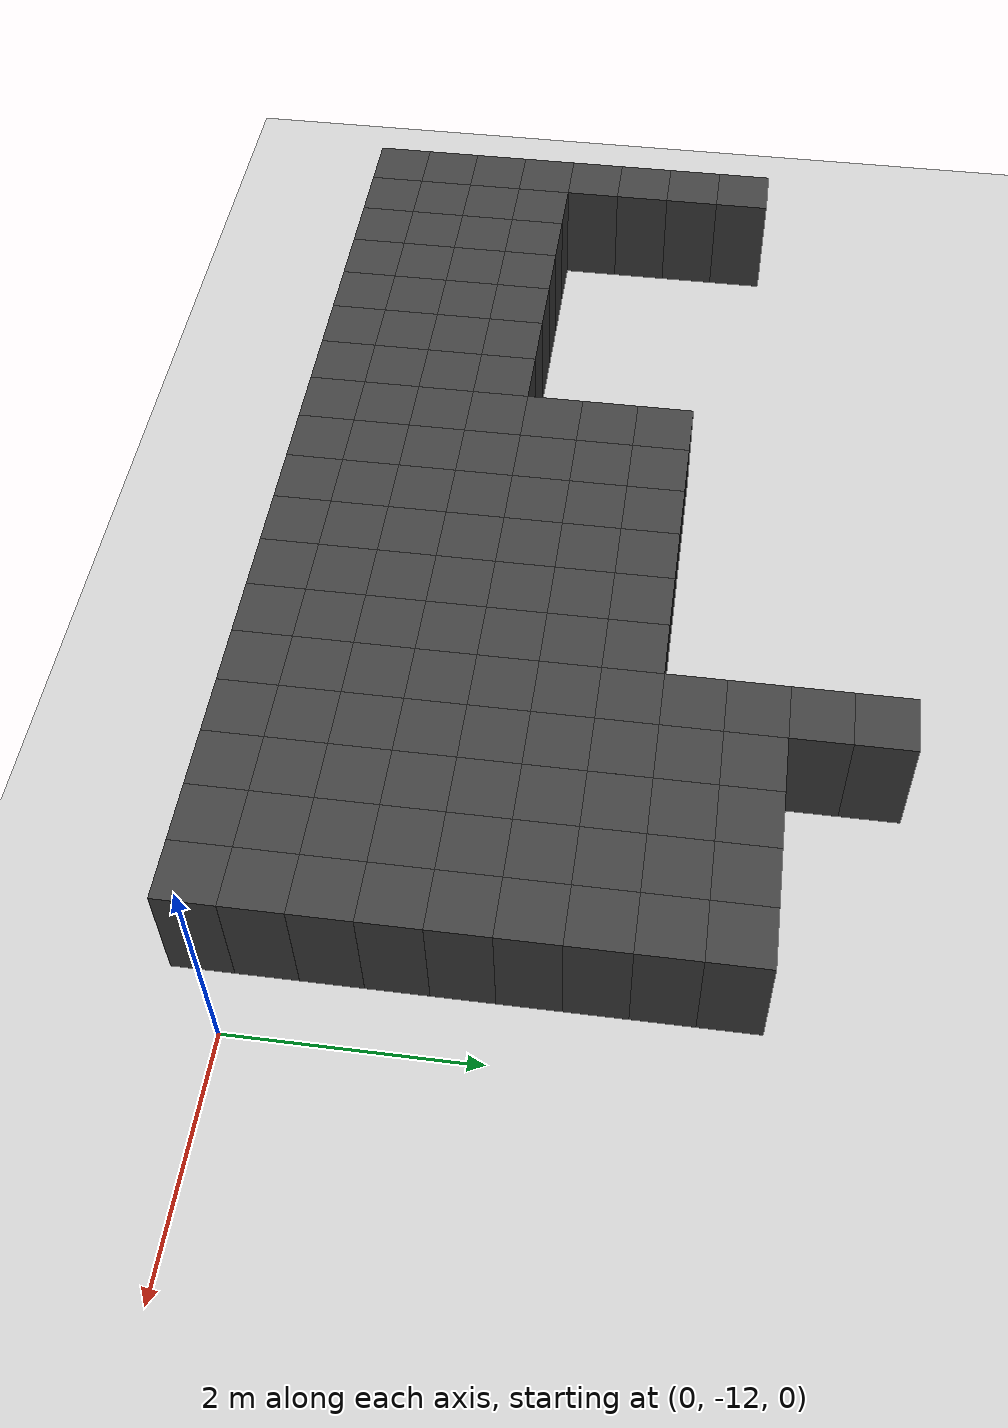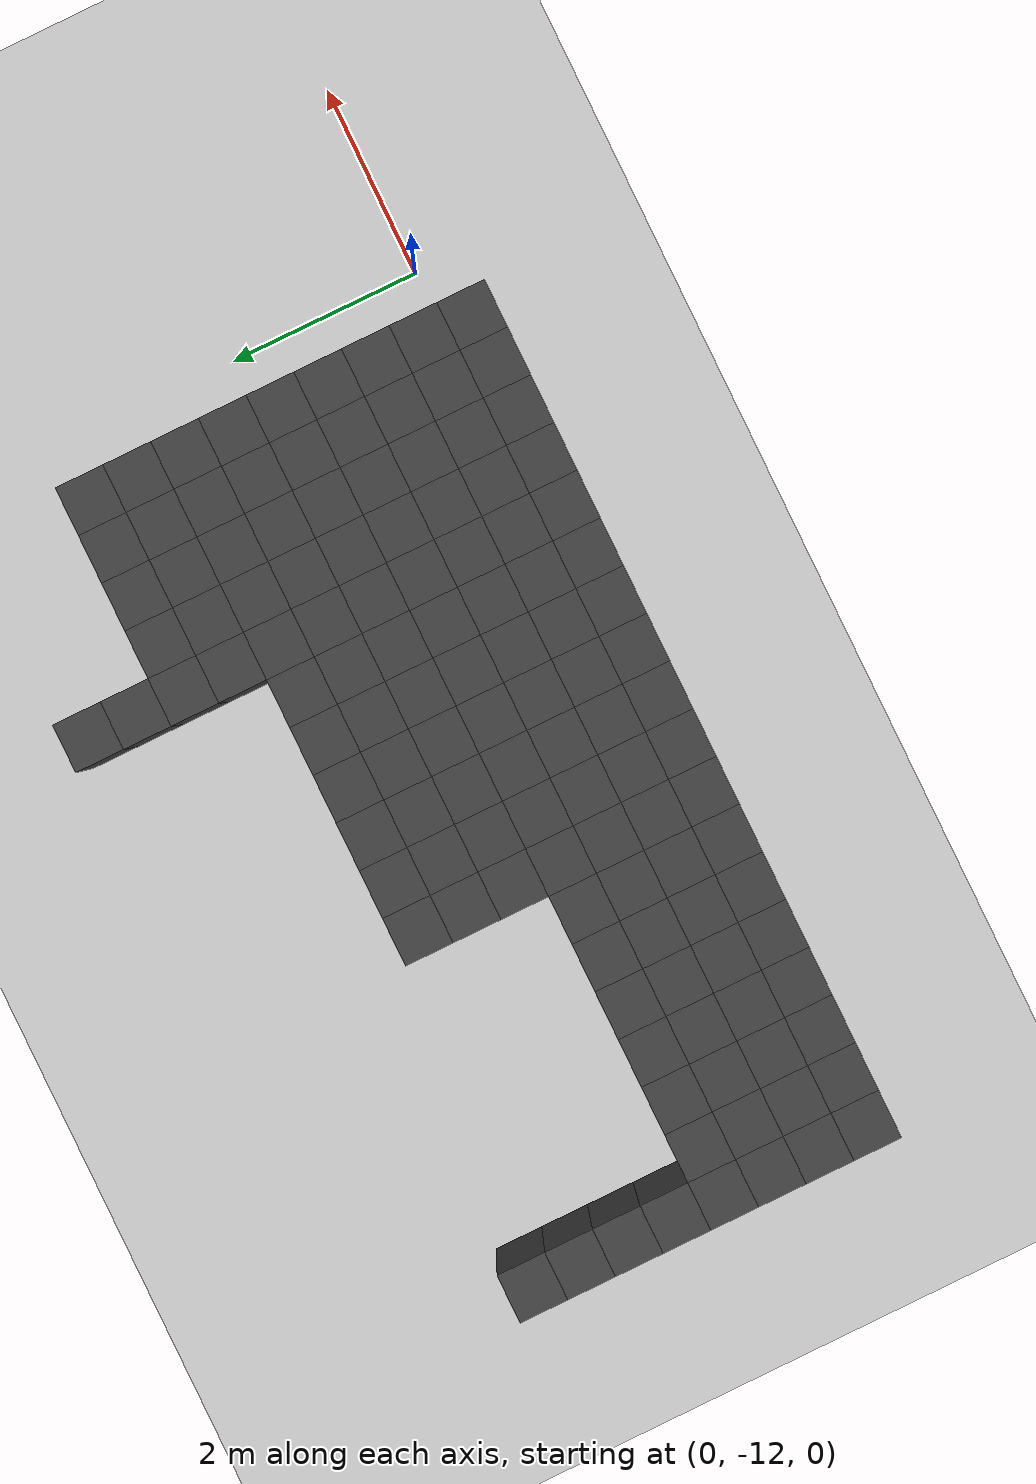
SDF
<sdf version="1.7">
 <world name="map_14547">
  <model name="ground_plane">
   <static>true</static>
   <link name="link">
    <collision name="collision">
     <geometry><plane><normal>0 0 1</normal><size>200 200</size></plane></geometry>
    </collision>
    <visual name="visual">
     <geometry><plane><normal>0 0 1</normal><size>200 200</size></plane></geometry>
     <material><ambient>0.8 0.8 0.8 1</ambient><diffuse>0.8 0.8 0.8 1</diffuse></material>
    </visual>
   </link>
  </model>
  <model name="maze_environment">
   <static>true</static>
   <link name="wall_1380">
    <pose>-2.750 -7.250 0.500 0 0 0</pose>
    <collision name="col"><geometry><box><size>0.5 0.5 1.0</size></box></geometry></collision>
    <visual name="vis">
     <geometry><box><size>0.5 0.5 1.0</size></box></geometry>
     <material><ambient>0.15 0.15 0.15 1</ambient><diffuse>0.25 0.25 0.25 1</diffuse></material>
    </visual>
   </link>
   <link name="wall_1411">
    <pose>-2.750 -7.750 0.500 0 0 0</pose>
    <collision name="col"><geometry><box><size>0.5 0.5 1.0</size></box></geometry></collision>
    <visual name="vis">
     <geometry><box><size>0.5 0.5 1.0</size></box></geometry>
     <material><ambient>0.15 0.15 0.15 1</ambient><diffuse>0.25 0.25 0.25 1</diffuse></material>
    </visual>
   </link>
   <link name="wall_1442">
    <pose>-2.750 -8.250 0.500 0 0 0</pose>
    <collision name="col"><geometry><box><size>0.5 0.5 1.0</size></box></geometry></collision>
    <visual name="vis">
     <geometry><box><size>0.5 0.5 1.0</size></box></geometry>
     <material><ambient>0.15 0.15 0.15 1</ambient><diffuse>0.25 0.25 0.25 1</diffuse></material>
    </visual>
   </link>
   <link name="wall_1443">
    <pose>-2.250 -8.250 0.500 0 0 0</pose>
    <collision name="col"><geometry><box><size>0.5 0.5 1.0</size></box></geometry></collision>
    <visual name="vis">
     <geometry><box><size>0.5 0.5 1.0</size></box></geometry>
     <material><ambient>0.15 0.15 0.15 1</ambient><diffuse>0.25 0.25 0.25 1</diffuse></material>
    </visual>
   </link>
   <link name="wall_1444">
    <pose>-1.750 -8.250 0.500 0 0 0</pose>
    <collision name="col"><geometry><box><size>0.5 0.5 1.0</size></box></geometry></collision>
    <visual name="vis">
     <geometry><box><size>0.5 0.5 1.0</size></box></geometry>
     <material><ambient>0.15 0.15 0.15 1</ambient><diffuse>0.25 0.25 0.25 1</diffuse></material>
    </visual>
   </link>
   <link name="wall_1445">
    <pose>-1.250 -8.250 0.500 0 0 0</pose>
    <collision name="col"><geometry><box><size>0.5 0.5 1.0</size></box></geometry></collision>
    <visual name="vis">
     <geometry><box><size>0.5 0.5 1.0</size></box></geometry>
     <material><ambient>0.15 0.15 0.15 1</ambient><diffuse>0.25 0.25 0.25 1</diffuse></material>
    </visual>
   </link>
   <link name="wall_1446">
    <pose>-0.750 -8.250 0.500 0 0 0</pose>
    <collision name="col"><geometry><box><size>0.5 0.5 1.0</size></box></geometry></collision>
    <visual name="vis">
     <geometry><box><size>0.5 0.5 1.0</size></box></geometry>
     <material><ambient>0.15 0.15 0.15 1</ambient><diffuse>0.25 0.25 0.25 1</diffuse></material>
    </visual>
   </link>
   <link name="wall_1478">
    <pose>-9.250 -8.750 0.500 0 0 0</pose>
    <collision name="col"><geometry><box><size>0.5 0.5 1.0</size></box></geometry></collision>
    <visual name="vis">
     <geometry><box><size>0.5 0.5 1.0</size></box></geometry>
     <material><ambient>0.15 0.15 0.15 1</ambient><diffuse>0.25 0.25 0.25 1</diffuse></material>
    </visual>
   </link>
   <link name="wall_1479">
    <pose>-2.750 -8.750 0.500 0 0 0</pose>
    <collision name="col"><geometry><box><size>0.5 0.5 1.0</size></box></geometry></collision>
    <visual name="vis">
     <geometry><box><size>0.5 0.5 1.0</size></box></geometry>
     <material><ambient>0.15 0.15 0.15 1</ambient><diffuse>0.25 0.25 0.25 1</diffuse></material>
    </visual>
   </link>
   <link name="wall_1480">
    <pose>-2.250 -8.750 0.500 0 0 0</pose>
    <collision name="col"><geometry><box><size>0.5 0.5 1.0</size></box></geometry></collision>
    <visual name="vis">
     <geometry><box><size>0.5 0.5 1.0</size></box></geometry>
     <material><ambient>0.15 0.15 0.15 1</ambient><diffuse>0.25 0.25 0.25 1</diffuse></material>
    </visual>
   </link>
   <link name="wall_1481">
    <pose>-1.750 -8.750 0.500 0 0 0</pose>
    <collision name="col"><geometry><box><size>0.5 0.5 1.0</size></box></geometry></collision>
    <visual name="vis">
     <geometry><box><size>0.5 0.5 1.0</size></box></geometry>
     <material><ambient>0.15 0.15 0.15 1</ambient><diffuse>0.25 0.25 0.25 1</diffuse></material>
    </visual>
   </link>
   <link name="wall_1482">
    <pose>-1.250 -8.750 0.500 0 0 0</pose>
    <collision name="col"><geometry><box><size>0.5 0.5 1.0</size></box></geometry></collision>
    <visual name="vis">
     <geometry><box><size>0.5 0.5 1.0</size></box></geometry>
     <material><ambient>0.15 0.15 0.15 1</ambient><diffuse>0.25 0.25 0.25 1</diffuse></material>
    </visual>
   </link>
   <link name="wall_1483">
    <pose>-0.750 -8.750 0.500 0 0 0</pose>
    <collision name="col"><geometry><box><size>0.5 0.5 1.0</size></box></geometry></collision>
    <visual name="vis">
     <geometry><box><size>0.5 0.5 1.0</size></box></geometry>
     <material><ambient>0.15 0.15 0.15 1</ambient><diffuse>0.25 0.25 0.25 1</diffuse></material>
    </visual>
   </link>
   <link name="wall_1515">
    <pose>-9.250 -9.250 0.500 0 0 0</pose>
    <collision name="col"><geometry><box><size>0.5 0.5 1.0</size></box></geometry></collision>
    <visual name="vis">
     <geometry><box><size>0.5 0.5 1.0</size></box></geometry>
     <material><ambient>0.15 0.15 0.15 1</ambient><diffuse>0.25 0.25 0.25 1</diffuse></material>
    </visual>
   </link>
   <link name="wall_1516">
    <pose>-5.750 -9.250 0.500 0 0 0</pose>
    <collision name="col"><geometry><box><size>0.5 0.5 1.0</size></box></geometry></collision>
    <visual name="vis">
     <geometry><box><size>0.5 0.5 1.0</size></box></geometry>
     <material><ambient>0.15 0.15 0.15 1</ambient><diffuse>0.25 0.25 0.25 1</diffuse></material>
    </visual>
   </link>
   <link name="wall_1517">
    <pose>-5.250 -9.250 0.500 0 0 0</pose>
    <collision name="col"><geometry><box><size>0.5 0.5 1.0</size></box></geometry></collision>
    <visual name="vis">
     <geometry><box><size>0.5 0.5 1.0</size></box></geometry>
     <material><ambient>0.15 0.15 0.15 1</ambient><diffuse>0.25 0.25 0.25 1</diffuse></material>
    </visual>
   </link>
   <link name="wall_1518">
    <pose>-4.750 -9.250 0.500 0 0 0</pose>
    <collision name="col"><geometry><box><size>0.5 0.5 1.0</size></box></geometry></collision>
    <visual name="vis">
     <geometry><box><size>0.5 0.5 1.0</size></box></geometry>
     <material><ambient>0.15 0.15 0.15 1</ambient><diffuse>0.25 0.25 0.25 1</diffuse></material>
    </visual>
   </link>
   <link name="wall_1519">
    <pose>-4.250 -9.250 0.500 0 0 0</pose>
    <collision name="col"><geometry><box><size>0.5 0.5 1.0</size></box></geometry></collision>
    <visual name="vis">
     <geometry><box><size>0.5 0.5 1.0</size></box></geometry>
     <material><ambient>0.15 0.15 0.15 1</ambient><diffuse>0.25 0.25 0.25 1</diffuse></material>
    </visual>
   </link>
   <link name="wall_1520">
    <pose>-3.750 -9.250 0.500 0 0 0</pose>
    <collision name="col"><geometry><box><size>0.5 0.5 1.0</size></box></geometry></collision>
    <visual name="vis">
     <geometry><box><size>0.5 0.5 1.0</size></box></geometry>
     <material><ambient>0.15 0.15 0.15 1</ambient><diffuse>0.25 0.25 0.25 1</diffuse></material>
    </visual>
   </link>
   <link name="wall_1521">
    <pose>-3.250 -9.250 0.500 0 0 0</pose>
    <collision name="col"><geometry><box><size>0.5 0.5 1.0</size></box></geometry></collision>
    <visual name="vis">
     <geometry><box><size>0.5 0.5 1.0</size></box></geometry>
     <material><ambient>0.15 0.15 0.15 1</ambient><diffuse>0.25 0.25 0.25 1</diffuse></material>
    </visual>
   </link>
   <link name="wall_1522">
    <pose>-2.750 -9.250 0.500 0 0 0</pose>
    <collision name="col"><geometry><box><size>0.5 0.5 1.0</size></box></geometry></collision>
    <visual name="vis">
     <geometry><box><size>0.5 0.5 1.0</size></box></geometry>
     <material><ambient>0.15 0.15 0.15 1</ambient><diffuse>0.25 0.25 0.25 1</diffuse></material>
    </visual>
   </link>
   <link name="wall_1523">
    <pose>-2.250 -9.250 0.500 0 0 0</pose>
    <collision name="col"><geometry><box><size>0.5 0.5 1.0</size></box></geometry></collision>
    <visual name="vis">
     <geometry><box><size>0.5 0.5 1.0</size></box></geometry>
     <material><ambient>0.15 0.15 0.15 1</ambient><diffuse>0.25 0.25 0.25 1</diffuse></material>
    </visual>
   </link>
   <link name="wall_1524">
    <pose>-1.750 -9.250 0.500 0 0 0</pose>
    <collision name="col"><geometry><box><size>0.5 0.5 1.0</size></box></geometry></collision>
    <visual name="vis">
     <geometry><box><size>0.5 0.5 1.0</size></box></geometry>
     <material><ambient>0.15 0.15 0.15 1</ambient><diffuse>0.25 0.25 0.25 1</diffuse></material>
    </visual>
   </link>
   <link name="wall_1525">
    <pose>-1.250 -9.250 0.500 0 0 0</pose>
    <collision name="col"><geometry><box><size>0.5 0.5 1.0</size></box></geometry></collision>
    <visual name="vis">
     <geometry><box><size>0.5 0.5 1.0</size></box></geometry>
     <material><ambient>0.15 0.15 0.15 1</ambient><diffuse>0.25 0.25 0.25 1</diffuse></material>
    </visual>
   </link>
   <link name="wall_1526">
    <pose>-0.750 -9.250 0.500 0 0 0</pose>
    <collision name="col"><geometry><box><size>0.5 0.5 1.0</size></box></geometry></collision>
    <visual name="vis">
     <geometry><box><size>0.5 0.5 1.0</size></box></geometry>
     <material><ambient>0.15 0.15 0.15 1</ambient><diffuse>0.25 0.25 0.25 1</diffuse></material>
    </visual>
   </link>
   <link name="wall_1558">
    <pose>-9.250 -9.750 0.500 0 0 0</pose>
    <collision name="col"><geometry><box><size>0.5 0.5 1.0</size></box></geometry></collision>
    <visual name="vis">
     <geometry><box><size>0.5 0.5 1.0</size></box></geometry>
     <material><ambient>0.15 0.15 0.15 1</ambient><diffuse>0.25 0.25 0.25 1</diffuse></material>
    </visual>
   </link>
   <link name="wall_1559">
    <pose>-5.750 -9.750 0.500 0 0 0</pose>
    <collision name="col"><geometry><box><size>0.5 0.5 1.0</size></box></geometry></collision>
    <visual name="vis">
     <geometry><box><size>0.5 0.5 1.0</size></box></geometry>
     <material><ambient>0.15 0.15 0.15 1</ambient><diffuse>0.25 0.25 0.25 1</diffuse></material>
    </visual>
   </link>
   <link name="wall_1560">
    <pose>-5.250 -9.750 0.500 0 0 0</pose>
    <collision name="col"><geometry><box><size>0.5 0.5 1.0</size></box></geometry></collision>
    <visual name="vis">
     <geometry><box><size>0.5 0.5 1.0</size></box></geometry>
     <material><ambient>0.15 0.15 0.15 1</ambient><diffuse>0.25 0.25 0.25 1</diffuse></material>
    </visual>
   </link>
   <link name="wall_1561">
    <pose>-4.750 -9.750 0.500 0 0 0</pose>
    <collision name="col"><geometry><box><size>0.5 0.5 1.0</size></box></geometry></collision>
    <visual name="vis">
     <geometry><box><size>0.5 0.5 1.0</size></box></geometry>
     <material><ambient>0.15 0.15 0.15 1</ambient><diffuse>0.25 0.25 0.25 1</diffuse></material>
    </visual>
   </link>
   <link name="wall_1562">
    <pose>-4.250 -9.750 0.500 0 0 0</pose>
    <collision name="col"><geometry><box><size>0.5 0.5 1.0</size></box></geometry></collision>
    <visual name="vis">
     <geometry><box><size>0.5 0.5 1.0</size></box></geometry>
     <material><ambient>0.15 0.15 0.15 1</ambient><diffuse>0.25 0.25 0.25 1</diffuse></material>
    </visual>
   </link>
   <link name="wall_1563">
    <pose>-3.750 -9.750 0.500 0 0 0</pose>
    <collision name="col"><geometry><box><size>0.5 0.5 1.0</size></box></geometry></collision>
    <visual name="vis">
     <geometry><box><size>0.5 0.5 1.0</size></box></geometry>
     <material><ambient>0.15 0.15 0.15 1</ambient><diffuse>0.25 0.25 0.25 1</diffuse></material>
    </visual>
   </link>
   <link name="wall_1564">
    <pose>-3.250 -9.750 0.500 0 0 0</pose>
    <collision name="col"><geometry><box><size>0.5 0.5 1.0</size></box></geometry></collision>
    <visual name="vis">
     <geometry><box><size>0.5 0.5 1.0</size></box></geometry>
     <material><ambient>0.15 0.15 0.15 1</ambient><diffuse>0.25 0.25 0.25 1</diffuse></material>
    </visual>
   </link>
   <link name="wall_1565">
    <pose>-2.750 -9.750 0.500 0 0 0</pose>
    <collision name="col"><geometry><box><size>0.5 0.5 1.0</size></box></geometry></collision>
    <visual name="vis">
     <geometry><box><size>0.5 0.5 1.0</size></box></geometry>
     <material><ambient>0.15 0.15 0.15 1</ambient><diffuse>0.25 0.25 0.25 1</diffuse></material>
    </visual>
   </link>
   <link name="wall_1566">
    <pose>-2.250 -9.750 0.500 0 0 0</pose>
    <collision name="col"><geometry><box><size>0.5 0.5 1.0</size></box></geometry></collision>
    <visual name="vis">
     <geometry><box><size>0.5 0.5 1.0</size></box></geometry>
     <material><ambient>0.15 0.15 0.15 1</ambient><diffuse>0.25 0.25 0.25 1</diffuse></material>
    </visual>
   </link>
   <link name="wall_1567">
    <pose>-1.750 -9.750 0.500 0 0 0</pose>
    <collision name="col"><geometry><box><size>0.5 0.5 1.0</size></box></geometry></collision>
    <visual name="vis">
     <geometry><box><size>0.5 0.5 1.0</size></box></geometry>
     <material><ambient>0.15 0.15 0.15 1</ambient><diffuse>0.25 0.25 0.25 1</diffuse></material>
    </visual>
   </link>
   <link name="wall_1568">
    <pose>-1.250 -9.750 0.500 0 0 0</pose>
    <collision name="col"><geometry><box><size>0.5 0.5 1.0</size></box></geometry></collision>
    <visual name="vis">
     <geometry><box><size>0.5 0.5 1.0</size></box></geometry>
     <material><ambient>0.15 0.15 0.15 1</ambient><diffuse>0.25 0.25 0.25 1</diffuse></material>
    </visual>
   </link>
   <link name="wall_1569">
    <pose>-0.750 -9.750 0.500 0 0 0</pose>
    <collision name="col"><geometry><box><size>0.5 0.5 1.0</size></box></geometry></collision>
    <visual name="vis">
     <geometry><box><size>0.5 0.5 1.0</size></box></geometry>
     <material><ambient>0.15 0.15 0.15 1</ambient><diffuse>0.25 0.25 0.25 1</diffuse></material>
    </visual>
   </link>
   <link name="wall_1601">
    <pose>-9.250 -10.250 0.500 0 0 0</pose>
    <collision name="col"><geometry><box><size>0.5 0.5 1.0</size></box></geometry></collision>
    <visual name="vis">
     <geometry><box><size>0.5 0.5 1.0</size></box></geometry>
     <material><ambient>0.15 0.15 0.15 1</ambient><diffuse>0.25 0.25 0.25 1</diffuse></material>
    </visual>
   </link>
   <link name="wall_1602">
    <pose>-5.750 -10.250 0.500 0 0 0</pose>
    <collision name="col"><geometry><box><size>0.5 0.5 1.0</size></box></geometry></collision>
    <visual name="vis">
     <geometry><box><size>0.5 0.5 1.0</size></box></geometry>
     <material><ambient>0.15 0.15 0.15 1</ambient><diffuse>0.25 0.25 0.25 1</diffuse></material>
    </visual>
   </link>
   <link name="wall_1603">
    <pose>-5.250 -10.250 0.500 0 0 0</pose>
    <collision name="col"><geometry><box><size>0.5 0.5 1.0</size></box></geometry></collision>
    <visual name="vis">
     <geometry><box><size>0.5 0.5 1.0</size></box></geometry>
     <material><ambient>0.15 0.15 0.15 1</ambient><diffuse>0.25 0.25 0.25 1</diffuse></material>
    </visual>
   </link>
   <link name="wall_1604">
    <pose>-4.750 -10.250 0.500 0 0 0</pose>
    <collision name="col"><geometry><box><size>0.5 0.5 1.0</size></box></geometry></collision>
    <visual name="vis">
     <geometry><box><size>0.5 0.5 1.0</size></box></geometry>
     <material><ambient>0.15 0.15 0.15 1</ambient><diffuse>0.25 0.25 0.25 1</diffuse></material>
    </visual>
   </link>
   <link name="wall_1605">
    <pose>-4.250 -10.250 0.500 0 0 0</pose>
    <collision name="col"><geometry><box><size>0.5 0.5 1.0</size></box></geometry></collision>
    <visual name="vis">
     <geometry><box><size>0.5 0.5 1.0</size></box></geometry>
     <material><ambient>0.15 0.15 0.15 1</ambient><diffuse>0.25 0.25 0.25 1</diffuse></material>
    </visual>
   </link>
   <link name="wall_1606">
    <pose>-3.750 -10.250 0.500 0 0 0</pose>
    <collision name="col"><geometry><box><size>0.5 0.5 1.0</size></box></geometry></collision>
    <visual name="vis">
     <geometry><box><size>0.5 0.5 1.0</size></box></geometry>
     <material><ambient>0.15 0.15 0.15 1</ambient><diffuse>0.25 0.25 0.25 1</diffuse></material>
    </visual>
   </link>
   <link name="wall_1607">
    <pose>-3.250 -10.250 0.500 0 0 0</pose>
    <collision name="col"><geometry><box><size>0.5 0.5 1.0</size></box></geometry></collision>
    <visual name="vis">
     <geometry><box><size>0.5 0.5 1.0</size></box></geometry>
     <material><ambient>0.15 0.15 0.15 1</ambient><diffuse>0.25 0.25 0.25 1</diffuse></material>
    </visual>
   </link>
   <link name="wall_1608">
    <pose>-2.750 -10.250 0.500 0 0 0</pose>
    <collision name="col"><geometry><box><size>0.5 0.5 1.0</size></box></geometry></collision>
    <visual name="vis">
     <geometry><box><size>0.5 0.5 1.0</size></box></geometry>
     <material><ambient>0.15 0.15 0.15 1</ambient><diffuse>0.25 0.25 0.25 1</diffuse></material>
    </visual>
   </link>
   <link name="wall_1609">
    <pose>-2.250 -10.250 0.500 0 0 0</pose>
    <collision name="col"><geometry><box><size>0.5 0.5 1.0</size></box></geometry></collision>
    <visual name="vis">
     <geometry><box><size>0.5 0.5 1.0</size></box></geometry>
     <material><ambient>0.15 0.15 0.15 1</ambient><diffuse>0.25 0.25 0.25 1</diffuse></material>
    </visual>
   </link>
   <link name="wall_1610">
    <pose>-1.750 -10.250 0.500 0 0 0</pose>
    <collision name="col"><geometry><box><size>0.5 0.5 1.0</size></box></geometry></collision>
    <visual name="vis">
     <geometry><box><size>0.5 0.5 1.0</size></box></geometry>
     <material><ambient>0.15 0.15 0.15 1</ambient><diffuse>0.25 0.25 0.25 1</diffuse></material>
    </visual>
   </link>
   <link name="wall_1611">
    <pose>-1.250 -10.250 0.500 0 0 0</pose>
    <collision name="col"><geometry><box><size>0.5 0.5 1.0</size></box></geometry></collision>
    <visual name="vis">
     <geometry><box><size>0.5 0.5 1.0</size></box></geometry>
     <material><ambient>0.15 0.15 0.15 1</ambient><diffuse>0.25 0.25 0.25 1</diffuse></material>
    </visual>
   </link>
   <link name="wall_1612">
    <pose>-0.750 -10.250 0.500 0 0 0</pose>
    <collision name="col"><geometry><box><size>0.5 0.5 1.0</size></box></geometry></collision>
    <visual name="vis">
     <geometry><box><size>0.5 0.5 1.0</size></box></geometry>
     <material><ambient>0.15 0.15 0.15 1</ambient><diffuse>0.25 0.25 0.25 1</diffuse></material>
    </visual>
   </link>
   <link name="wall_1644">
    <pose>-9.250 -10.750 0.500 0 0 0</pose>
    <collision name="col"><geometry><box><size>0.5 0.5 1.0</size></box></geometry></collision>
    <visual name="vis">
     <geometry><box><size>0.5 0.5 1.0</size></box></geometry>
     <material><ambient>0.15 0.15 0.15 1</ambient><diffuse>0.25 0.25 0.25 1</diffuse></material>
    </visual>
   </link>
   <link name="wall_1645">
    <pose>-8.750 -10.750 0.500 0 0 0</pose>
    <collision name="col"><geometry><box><size>0.5 0.5 1.0</size></box></geometry></collision>
    <visual name="vis">
     <geometry><box><size>0.5 0.5 1.0</size></box></geometry>
     <material><ambient>0.15 0.15 0.15 1</ambient><diffuse>0.25 0.25 0.25 1</diffuse></material>
    </visual>
   </link>
   <link name="wall_1646">
    <pose>-8.250 -10.750 0.500 0 0 0</pose>
    <collision name="col"><geometry><box><size>0.5 0.5 1.0</size></box></geometry></collision>
    <visual name="vis">
     <geometry><box><size>0.5 0.5 1.0</size></box></geometry>
     <material><ambient>0.15 0.15 0.15 1</ambient><diffuse>0.25 0.25 0.25 1</diffuse></material>
    </visual>
   </link>
   <link name="wall_1647">
    <pose>-7.750 -10.750 0.500 0 0 0</pose>
    <collision name="col"><geometry><box><size>0.5 0.5 1.0</size></box></geometry></collision>
    <visual name="vis">
     <geometry><box><size>0.5 0.5 1.0</size></box></geometry>
     <material><ambient>0.15 0.15 0.15 1</ambient><diffuse>0.25 0.25 0.25 1</diffuse></material>
    </visual>
   </link>
   <link name="wall_1648">
    <pose>-7.250 -10.750 0.500 0 0 0</pose>
    <collision name="col"><geometry><box><size>0.5 0.5 1.0</size></box></geometry></collision>
    <visual name="vis">
     <geometry><box><size>0.5 0.5 1.0</size></box></geometry>
     <material><ambient>0.15 0.15 0.15 1</ambient><diffuse>0.25 0.25 0.25 1</diffuse></material>
    </visual>
   </link>
   <link name="wall_1649">
    <pose>-6.750 -10.750 0.500 0 0 0</pose>
    <collision name="col"><geometry><box><size>0.5 0.5 1.0</size></box></geometry></collision>
    <visual name="vis">
     <geometry><box><size>0.5 0.5 1.0</size></box></geometry>
     <material><ambient>0.15 0.15 0.15 1</ambient><diffuse>0.25 0.25 0.25 1</diffuse></material>
    </visual>
   </link>
   <link name="wall_1650">
    <pose>-6.250 -10.750 0.500 0 0 0</pose>
    <collision name="col"><geometry><box><size>0.5 0.5 1.0</size></box></geometry></collision>
    <visual name="vis">
     <geometry><box><size>0.5 0.5 1.0</size></box></geometry>
     <material><ambient>0.15 0.15 0.15 1</ambient><diffuse>0.25 0.25 0.25 1</diffuse></material>
    </visual>
   </link>
   <link name="wall_1651">
    <pose>-5.750 -10.750 0.500 0 0 0</pose>
    <collision name="col"><geometry><box><size>0.5 0.5 1.0</size></box></geometry></collision>
    <visual name="vis">
     <geometry><box><size>0.5 0.5 1.0</size></box></geometry>
     <material><ambient>0.15 0.15 0.15 1</ambient><diffuse>0.25 0.25 0.25 1</diffuse></material>
    </visual>
   </link>
   <link name="wall_1652">
    <pose>-5.250 -10.750 0.500 0 0 0</pose>
    <collision name="col"><geometry><box><size>0.5 0.5 1.0</size></box></geometry></collision>
    <visual name="vis">
     <geometry><box><size>0.5 0.5 1.0</size></box></geometry>
     <material><ambient>0.15 0.15 0.15 1</ambient><diffuse>0.25 0.25 0.25 1</diffuse></material>
    </visual>
   </link>
   <link name="wall_1653">
    <pose>-4.750 -10.750 0.500 0 0 0</pose>
    <collision name="col"><geometry><box><size>0.5 0.5 1.0</size></box></geometry></collision>
    <visual name="vis">
     <geometry><box><size>0.5 0.5 1.0</size></box></geometry>
     <material><ambient>0.15 0.15 0.15 1</ambient><diffuse>0.25 0.25 0.25 1</diffuse></material>
    </visual>
   </link>
   <link name="wall_1654">
    <pose>-4.250 -10.750 0.500 0 0 0</pose>
    <collision name="col"><geometry><box><size>0.5 0.5 1.0</size></box></geometry></collision>
    <visual name="vis">
     <geometry><box><size>0.5 0.5 1.0</size></box></geometry>
     <material><ambient>0.15 0.15 0.15 1</ambient><diffuse>0.25 0.25 0.25 1</diffuse></material>
    </visual>
   </link>
   <link name="wall_1655">
    <pose>-3.750 -10.750 0.500 0 0 0</pose>
    <collision name="col"><geometry><box><size>0.5 0.5 1.0</size></box></geometry></collision>
    <visual name="vis">
     <geometry><box><size>0.5 0.5 1.0</size></box></geometry>
     <material><ambient>0.15 0.15 0.15 1</ambient><diffuse>0.25 0.25 0.25 1</diffuse></material>
    </visual>
   </link>
   <link name="wall_1656">
    <pose>-3.250 -10.750 0.500 0 0 0</pose>
    <collision name="col"><geometry><box><size>0.5 0.5 1.0</size></box></geometry></collision>
    <visual name="vis">
     <geometry><box><size>0.5 0.5 1.0</size></box></geometry>
     <material><ambient>0.15 0.15 0.15 1</ambient><diffuse>0.25 0.25 0.25 1</diffuse></material>
    </visual>
   </link>
   <link name="wall_1657">
    <pose>-2.750 -10.750 0.500 0 0 0</pose>
    <collision name="col"><geometry><box><size>0.5 0.5 1.0</size></box></geometry></collision>
    <visual name="vis">
     <geometry><box><size>0.5 0.5 1.0</size></box></geometry>
     <material><ambient>0.15 0.15 0.15 1</ambient><diffuse>0.25 0.25 0.25 1</diffuse></material>
    </visual>
   </link>
   <link name="wall_1658">
    <pose>-2.250 -10.750 0.500 0 0 0</pose>
    <collision name="col"><geometry><box><size>0.5 0.5 1.0</size></box></geometry></collision>
    <visual name="vis">
     <geometry><box><size>0.5 0.5 1.0</size></box></geometry>
     <material><ambient>0.15 0.15 0.15 1</ambient><diffuse>0.25 0.25 0.25 1</diffuse></material>
    </visual>
   </link>
   <link name="wall_1659">
    <pose>-1.750 -10.750 0.500 0 0 0</pose>
    <collision name="col"><geometry><box><size>0.5 0.5 1.0</size></box></geometry></collision>
    <visual name="vis">
     <geometry><box><size>0.5 0.5 1.0</size></box></geometry>
     <material><ambient>0.15 0.15 0.15 1</ambient><diffuse>0.25 0.25 0.25 1</diffuse></material>
    </visual>
   </link>
   <link name="wall_1660">
    <pose>-1.250 -10.750 0.500 0 0 0</pose>
    <collision name="col"><geometry><box><size>0.5 0.5 1.0</size></box></geometry></collision>
    <visual name="vis">
     <geometry><box><size>0.5 0.5 1.0</size></box></geometry>
     <material><ambient>0.15 0.15 0.15 1</ambient><diffuse>0.25 0.25 0.25 1</diffuse></material>
    </visual>
   </link>
   <link name="wall_1661">
    <pose>-0.750 -10.750 0.500 0 0 0</pose>
    <collision name="col"><geometry><box><size>0.5 0.5 1.0</size></box></geometry></collision>
    <visual name="vis">
     <geometry><box><size>0.5 0.5 1.0</size></box></geometry>
     <material><ambient>0.15 0.15 0.15 1</ambient><diffuse>0.25 0.25 0.25 1</diffuse></material>
    </visual>
   </link>
   <link name="wall_1690">
    <pose>-9.250 -11.250 0.500 0 0 0</pose>
    <collision name="col"><geometry><box><size>0.5 0.5 1.0</size></box></geometry></collision>
    <visual name="vis">
     <geometry><box><size>0.5 0.5 1.0</size></box></geometry>
     <material><ambient>0.15 0.15 0.15 1</ambient><diffuse>0.25 0.25 0.25 1</diffuse></material>
    </visual>
   </link>
   <link name="wall_1691">
    <pose>-8.750 -11.250 0.500 0 0 0</pose>
    <collision name="col"><geometry><box><size>0.5 0.5 1.0</size></box></geometry></collision>
    <visual name="vis">
     <geometry><box><size>0.5 0.5 1.0</size></box></geometry>
     <material><ambient>0.15 0.15 0.15 1</ambient><diffuse>0.25 0.25 0.25 1</diffuse></material>
    </visual>
   </link>
   <link name="wall_1692">
    <pose>-8.250 -11.250 0.500 0 0 0</pose>
    <collision name="col"><geometry><box><size>0.5 0.5 1.0</size></box></geometry></collision>
    <visual name="vis">
     <geometry><box><size>0.5 0.5 1.0</size></box></geometry>
     <material><ambient>0.15 0.15 0.15 1</ambient><diffuse>0.25 0.25 0.25 1</diffuse></material>
    </visual>
   </link>
   <link name="wall_1693">
    <pose>-7.750 -11.250 0.500 0 0 0</pose>
    <collision name="col"><geometry><box><size>0.5 0.5 1.0</size></box></geometry></collision>
    <visual name="vis">
     <geometry><box><size>0.5 0.5 1.0</size></box></geometry>
     <material><ambient>0.15 0.15 0.15 1</ambient><diffuse>0.25 0.25 0.25 1</diffuse></material>
    </visual>
   </link>
   <link name="wall_1694">
    <pose>-7.250 -11.250 0.500 0 0 0</pose>
    <collision name="col"><geometry><box><size>0.5 0.5 1.0</size></box></geometry></collision>
    <visual name="vis">
     <geometry><box><size>0.5 0.5 1.0</size></box></geometry>
     <material><ambient>0.15 0.15 0.15 1</ambient><diffuse>0.25 0.25 0.25 1</diffuse></material>
    </visual>
   </link>
   <link name="wall_1695">
    <pose>-6.750 -11.250 0.500 0 0 0</pose>
    <collision name="col"><geometry><box><size>0.5 0.5 1.0</size></box></geometry></collision>
    <visual name="vis">
     <geometry><box><size>0.5 0.5 1.0</size></box></geometry>
     <material><ambient>0.15 0.15 0.15 1</ambient><diffuse>0.25 0.25 0.25 1</diffuse></material>
    </visual>
   </link>
   <link name="wall_1696">
    <pose>-6.250 -11.250 0.500 0 0 0</pose>
    <collision name="col"><geometry><box><size>0.5 0.5 1.0</size></box></geometry></collision>
    <visual name="vis">
     <geometry><box><size>0.5 0.5 1.0</size></box></geometry>
     <material><ambient>0.15 0.15 0.15 1</ambient><diffuse>0.25 0.25 0.25 1</diffuse></material>
    </visual>
   </link>
   <link name="wall_1697">
    <pose>-5.750 -11.250 0.500 0 0 0</pose>
    <collision name="col"><geometry><box><size>0.5 0.5 1.0</size></box></geometry></collision>
    <visual name="vis">
     <geometry><box><size>0.5 0.5 1.0</size></box></geometry>
     <material><ambient>0.15 0.15 0.15 1</ambient><diffuse>0.25 0.25 0.25 1</diffuse></material>
    </visual>
   </link>
   <link name="wall_1698">
    <pose>-5.250 -11.250 0.500 0 0 0</pose>
    <collision name="col"><geometry><box><size>0.5 0.5 1.0</size></box></geometry></collision>
    <visual name="vis">
     <geometry><box><size>0.5 0.5 1.0</size></box></geometry>
     <material><ambient>0.15 0.15 0.15 1</ambient><diffuse>0.25 0.25 0.25 1</diffuse></material>
    </visual>
   </link>
   <link name="wall_1699">
    <pose>-4.750 -11.250 0.500 0 0 0</pose>
    <collision name="col"><geometry><box><size>0.5 0.5 1.0</size></box></geometry></collision>
    <visual name="vis">
     <geometry><box><size>0.5 0.5 1.0</size></box></geometry>
     <material><ambient>0.15 0.15 0.15 1</ambient><diffuse>0.25 0.25 0.25 1</diffuse></material>
    </visual>
   </link>
   <link name="wall_1700">
    <pose>-4.250 -11.250 0.500 0 0 0</pose>
    <collision name="col"><geometry><box><size>0.5 0.5 1.0</size></box></geometry></collision>
    <visual name="vis">
     <geometry><box><size>0.5 0.5 1.0</size></box></geometry>
     <material><ambient>0.15 0.15 0.15 1</ambient><diffuse>0.25 0.25 0.25 1</diffuse></material>
    </visual>
   </link>
   <link name="wall_1701">
    <pose>-3.750 -11.250 0.500 0 0 0</pose>
    <collision name="col"><geometry><box><size>0.5 0.5 1.0</size></box></geometry></collision>
    <visual name="vis">
     <geometry><box><size>0.5 0.5 1.0</size></box></geometry>
     <material><ambient>0.15 0.15 0.15 1</ambient><diffuse>0.25 0.25 0.25 1</diffuse></material>
    </visual>
   </link>
   <link name="wall_1702">
    <pose>-3.250 -11.250 0.500 0 0 0</pose>
    <collision name="col"><geometry><box><size>0.5 0.5 1.0</size></box></geometry></collision>
    <visual name="vis">
     <geometry><box><size>0.5 0.5 1.0</size></box></geometry>
     <material><ambient>0.15 0.15 0.15 1</ambient><diffuse>0.25 0.25 0.25 1</diffuse></material>
    </visual>
   </link>
   <link name="wall_1703">
    <pose>-2.750 -11.250 0.500 0 0 0</pose>
    <collision name="col"><geometry><box><size>0.5 0.5 1.0</size></box></geometry></collision>
    <visual name="vis">
     <geometry><box><size>0.5 0.5 1.0</size></box></geometry>
     <material><ambient>0.15 0.15 0.15 1</ambient><diffuse>0.25 0.25 0.25 1</diffuse></material>
    </visual>
   </link>
   <link name="wall_1704">
    <pose>-2.250 -11.250 0.500 0 0 0</pose>
    <collision name="col"><geometry><box><size>0.5 0.5 1.0</size></box></geometry></collision>
    <visual name="vis">
     <geometry><box><size>0.5 0.5 1.0</size></box></geometry>
     <material><ambient>0.15 0.15 0.15 1</ambient><diffuse>0.25 0.25 0.25 1</diffuse></material>
    </visual>
   </link>
   <link name="wall_1705">
    <pose>-1.750 -11.250 0.500 0 0 0</pose>
    <collision name="col"><geometry><box><size>0.5 0.5 1.0</size></box></geometry></collision>
    <visual name="vis">
     <geometry><box><size>0.5 0.5 1.0</size></box></geometry>
     <material><ambient>0.15 0.15 0.15 1</ambient><diffuse>0.25 0.25 0.25 1</diffuse></material>
    </visual>
   </link>
   <link name="wall_1706">
    <pose>-1.250 -11.250 0.500 0 0 0</pose>
    <collision name="col"><geometry><box><size>0.5 0.5 1.0</size></box></geometry></collision>
    <visual name="vis">
     <geometry><box><size>0.5 0.5 1.0</size></box></geometry>
     <material><ambient>0.15 0.15 0.15 1</ambient><diffuse>0.25 0.25 0.25 1</diffuse></material>
    </visual>
   </link>
   <link name="wall_1707">
    <pose>-0.750 -11.250 0.500 0 0 0</pose>
    <collision name="col"><geometry><box><size>0.5 0.5 1.0</size></box></geometry></collision>
    <visual name="vis">
     <geometry><box><size>0.5 0.5 1.0</size></box></geometry>
     <material><ambient>0.15 0.15 0.15 1</ambient><diffuse>0.25 0.25 0.25 1</diffuse></material>
    </visual>
   </link>
   <link name="wall_1733">
    <pose>-9.250 -11.750 0.500 0 0 0</pose>
    <collision name="col"><geometry><box><size>0.5 0.5 1.0</size></box></geometry></collision>
    <visual name="vis">
     <geometry><box><size>0.5 0.5 1.0</size></box></geometry>
     <material><ambient>0.15 0.15 0.15 1</ambient><diffuse>0.25 0.25 0.25 1</diffuse></material>
    </visual>
   </link>
   <link name="wall_1734">
    <pose>-8.750 -11.750 0.500 0 0 0</pose>
    <collision name="col"><geometry><box><size>0.5 0.5 1.0</size></box></geometry></collision>
    <visual name="vis">
     <geometry><box><size>0.5 0.5 1.0</size></box></geometry>
     <material><ambient>0.15 0.15 0.15 1</ambient><diffuse>0.25 0.25 0.25 1</diffuse></material>
    </visual>
   </link>
   <link name="wall_1735">
    <pose>-8.250 -11.750 0.500 0 0 0</pose>
    <collision name="col"><geometry><box><size>0.5 0.5 1.0</size></box></geometry></collision>
    <visual name="vis">
     <geometry><box><size>0.5 0.5 1.0</size></box></geometry>
     <material><ambient>0.15 0.15 0.15 1</ambient><diffuse>0.25 0.25 0.25 1</diffuse></material>
    </visual>
   </link>
   <link name="wall_1736">
    <pose>-7.750 -11.750 0.500 0 0 0</pose>
    <collision name="col"><geometry><box><size>0.5 0.5 1.0</size></box></geometry></collision>
    <visual name="vis">
     <geometry><box><size>0.5 0.5 1.0</size></box></geometry>
     <material><ambient>0.15 0.15 0.15 1</ambient><diffuse>0.25 0.25 0.25 1</diffuse></material>
    </visual>
   </link>
   <link name="wall_1737">
    <pose>-7.250 -11.750 0.500 0 0 0</pose>
    <collision name="col"><geometry><box><size>0.5 0.5 1.0</size></box></geometry></collision>
    <visual name="vis">
     <geometry><box><size>0.5 0.5 1.0</size></box></geometry>
     <material><ambient>0.15 0.15 0.15 1</ambient><diffuse>0.25 0.25 0.25 1</diffuse></material>
    </visual>
   </link>
   <link name="wall_1738">
    <pose>-6.750 -11.750 0.500 0 0 0</pose>
    <collision name="col"><geometry><box><size>0.5 0.5 1.0</size></box></geometry></collision>
    <visual name="vis">
     <geometry><box><size>0.5 0.5 1.0</size></box></geometry>
     <material><ambient>0.15 0.15 0.15 1</ambient><diffuse>0.25 0.25 0.25 1</diffuse></material>
    </visual>
   </link>
   <link name="wall_1739">
    <pose>-6.250 -11.750 0.500 0 0 0</pose>
    <collision name="col"><geometry><box><size>0.5 0.5 1.0</size></box></geometry></collision>
    <visual name="vis">
     <geometry><box><size>0.5 0.5 1.0</size></box></geometry>
     <material><ambient>0.15 0.15 0.15 1</ambient><diffuse>0.25 0.25 0.25 1</diffuse></material>
    </visual>
   </link>
   <link name="wall_1740">
    <pose>-5.750 -11.750 0.500 0 0 0</pose>
    <collision name="col"><geometry><box><size>0.5 0.5 1.0</size></box></geometry></collision>
    <visual name="vis">
     <geometry><box><size>0.5 0.5 1.0</size></box></geometry>
     <material><ambient>0.15 0.15 0.15 1</ambient><diffuse>0.25 0.25 0.25 1</diffuse></material>
    </visual>
   </link>
   <link name="wall_1741">
    <pose>-5.250 -11.750 0.500 0 0 0</pose>
    <collision name="col"><geometry><box><size>0.5 0.5 1.0</size></box></geometry></collision>
    <visual name="vis">
     <geometry><box><size>0.5 0.5 1.0</size></box></geometry>
     <material><ambient>0.15 0.15 0.15 1</ambient><diffuse>0.25 0.25 0.25 1</diffuse></material>
    </visual>
   </link>
   <link name="wall_1742">
    <pose>-4.750 -11.750 0.500 0 0 0</pose>
    <collision name="col"><geometry><box><size>0.5 0.5 1.0</size></box></geometry></collision>
    <visual name="vis">
     <geometry><box><size>0.5 0.5 1.0</size></box></geometry>
     <material><ambient>0.15 0.15 0.15 1</ambient><diffuse>0.25 0.25 0.25 1</diffuse></material>
    </visual>
   </link>
   <link name="wall_1743">
    <pose>-4.250 -11.750 0.500 0 0 0</pose>
    <collision name="col"><geometry><box><size>0.5 0.5 1.0</size></box></geometry></collision>
    <visual name="vis">
     <geometry><box><size>0.5 0.5 1.0</size></box></geometry>
     <material><ambient>0.15 0.15 0.15 1</ambient><diffuse>0.25 0.25 0.25 1</diffuse></material>
    </visual>
   </link>
   <link name="wall_1744">
    <pose>-3.750 -11.750 0.500 0 0 0</pose>
    <collision name="col"><geometry><box><size>0.5 0.5 1.0</size></box></geometry></collision>
    <visual name="vis">
     <geometry><box><size>0.5 0.5 1.0</size></box></geometry>
     <material><ambient>0.15 0.15 0.15 1</ambient><diffuse>0.25 0.25 0.25 1</diffuse></material>
    </visual>
   </link>
   <link name="wall_1745">
    <pose>-3.250 -11.750 0.500 0 0 0</pose>
    <collision name="col"><geometry><box><size>0.5 0.5 1.0</size></box></geometry></collision>
    <visual name="vis">
     <geometry><box><size>0.5 0.5 1.0</size></box></geometry>
     <material><ambient>0.15 0.15 0.15 1</ambient><diffuse>0.25 0.25 0.25 1</diffuse></material>
    </visual>
   </link>
   <link name="wall_1746">
    <pose>-2.750 -11.750 0.500 0 0 0</pose>
    <collision name="col"><geometry><box><size>0.5 0.5 1.0</size></box></geometry></collision>
    <visual name="vis">
     <geometry><box><size>0.5 0.5 1.0</size></box></geometry>
     <material><ambient>0.15 0.15 0.15 1</ambient><diffuse>0.25 0.25 0.25 1</diffuse></material>
    </visual>
   </link>
   <link name="wall_1747">
    <pose>-2.250 -11.750 0.500 0 0 0</pose>
    <collision name="col"><geometry><box><size>0.5 0.5 1.0</size></box></geometry></collision>
    <visual name="vis">
     <geometry><box><size>0.5 0.5 1.0</size></box></geometry>
     <material><ambient>0.15 0.15 0.15 1</ambient><diffuse>0.25 0.25 0.25 1</diffuse></material>
    </visual>
   </link>
   <link name="wall_1748">
    <pose>-1.750 -11.750 0.500 0 0 0</pose>
    <collision name="col"><geometry><box><size>0.5 0.5 1.0</size></box></geometry></collision>
    <visual name="vis">
     <geometry><box><size>0.5 0.5 1.0</size></box></geometry>
     <material><ambient>0.15 0.15 0.15 1</ambient><diffuse>0.25 0.25 0.25 1</diffuse></material>
    </visual>
   </link>
   <link name="wall_1749">
    <pose>-1.250 -11.750 0.500 0 0 0</pose>
    <collision name="col"><geometry><box><size>0.5 0.5 1.0</size></box></geometry></collision>
    <visual name="vis">
     <geometry><box><size>0.5 0.5 1.0</size></box></geometry>
     <material><ambient>0.15 0.15 0.15 1</ambient><diffuse>0.25 0.25 0.25 1</diffuse></material>
    </visual>
   </link>
   <link name="wall_1750">
    <pose>-0.750 -11.750 0.500 0 0 0</pose>
    <collision name="col"><geometry><box><size>0.5 0.5 1.0</size></box></geometry></collision>
    <visual name="vis">
     <geometry><box><size>0.5 0.5 1.0</size></box></geometry>
     <material><ambient>0.15 0.15 0.15 1</ambient><diffuse>0.25 0.25 0.25 1</diffuse></material>
    </visual>
   </link>
   <link name="wall_1780">
    <pose>-9.250 -12.250 0.500 0 0 0</pose>
    <collision name="col"><geometry><box><size>0.5 0.5 1.0</size></box></geometry></collision>
    <visual name="vis">
     <geometry><box><size>0.5 0.5 1.0</size></box></geometry>
     <material><ambient>0.15 0.15 0.15 1</ambient><diffuse>0.25 0.25 0.25 1</diffuse></material>
    </visual>
   </link>
   <link name="wall_1781">
    <pose>-8.750 -12.250 0.500 0 0 0</pose>
    <collision name="col"><geometry><box><size>0.5 0.5 1.0</size></box></geometry></collision>
    <visual name="vis">
     <geometry><box><size>0.5 0.5 1.0</size></box></geometry>
     <material><ambient>0.15 0.15 0.15 1</ambient><diffuse>0.25 0.25 0.25 1</diffuse></material>
    </visual>
   </link>
   <link name="wall_1782">
    <pose>-8.250 -12.250 0.500 0 0 0</pose>
    <collision name="col"><geometry><box><size>0.5 0.5 1.0</size></box></geometry></collision>
    <visual name="vis">
     <geometry><box><size>0.5 0.5 1.0</size></box></geometry>
     <material><ambient>0.15 0.15 0.15 1</ambient><diffuse>0.25 0.25 0.25 1</diffuse></material>
    </visual>
   </link>
   <link name="wall_1783">
    <pose>-7.750 -12.250 0.500 0 0 0</pose>
    <collision name="col"><geometry><box><size>0.5 0.5 1.0</size></box></geometry></collision>
    <visual name="vis">
     <geometry><box><size>0.5 0.5 1.0</size></box></geometry>
     <material><ambient>0.15 0.15 0.15 1</ambient><diffuse>0.25 0.25 0.25 1</diffuse></material>
    </visual>
   </link>
   <link name="wall_1784">
    <pose>-7.250 -12.250 0.500 0 0 0</pose>
    <collision name="col"><geometry><box><size>0.5 0.5 1.0</size></box></geometry></collision>
    <visual name="vis">
     <geometry><box><size>0.5 0.5 1.0</size></box></geometry>
     <material><ambient>0.15 0.15 0.15 1</ambient><diffuse>0.25 0.25 0.25 1</diffuse></material>
    </visual>
   </link>
   <link name="wall_1785">
    <pose>-6.750 -12.250 0.500 0 0 0</pose>
    <collision name="col"><geometry><box><size>0.5 0.5 1.0</size></box></geometry></collision>
    <visual name="vis">
     <geometry><box><size>0.5 0.5 1.0</size></box></geometry>
     <material><ambient>0.15 0.15 0.15 1</ambient><diffuse>0.25 0.25 0.25 1</diffuse></material>
    </visual>
   </link>
   <link name="wall_1786">
    <pose>-6.250 -12.250 0.500 0 0 0</pose>
    <collision name="col"><geometry><box><size>0.5 0.5 1.0</size></box></geometry></collision>
    <visual name="vis">
     <geometry><box><size>0.5 0.5 1.0</size></box></geometry>
     <material><ambient>0.15 0.15 0.15 1</ambient><diffuse>0.25 0.25 0.25 1</diffuse></material>
    </visual>
   </link>
   <link name="wall_1787">
    <pose>-5.750 -12.250 0.500 0 0 0</pose>
    <collision name="col"><geometry><box><size>0.5 0.5 1.0</size></box></geometry></collision>
    <visual name="vis">
     <geometry><box><size>0.5 0.5 1.0</size></box></geometry>
     <material><ambient>0.15 0.15 0.15 1</ambient><diffuse>0.25 0.25 0.25 1</diffuse></material>
    </visual>
   </link>
   <link name="wall_1788">
    <pose>-5.250 -12.250 0.500 0 0 0</pose>
    <collision name="col"><geometry><box><size>0.5 0.5 1.0</size></box></geometry></collision>
    <visual name="vis">
     <geometry><box><size>0.5 0.5 1.0</size></box></geometry>
     <material><ambient>0.15 0.15 0.15 1</ambient><diffuse>0.25 0.25 0.25 1</diffuse></material>
    </visual>
   </link>
   <link name="wall_1789">
    <pose>-4.750 -12.250 0.500 0 0 0</pose>
    <collision name="col"><geometry><box><size>0.5 0.5 1.0</size></box></geometry></collision>
    <visual name="vis">
     <geometry><box><size>0.5 0.5 1.0</size></box></geometry>
     <material><ambient>0.15 0.15 0.15 1</ambient><diffuse>0.25 0.25 0.25 1</diffuse></material>
    </visual>
   </link>
   <link name="wall_1790">
    <pose>-4.250 -12.250 0.500 0 0 0</pose>
    <collision name="col"><geometry><box><size>0.5 0.5 1.0</size></box></geometry></collision>
    <visual name="vis">
     <geometry><box><size>0.5 0.5 1.0</size></box></geometry>
     <material><ambient>0.15 0.15 0.15 1</ambient><diffuse>0.25 0.25 0.25 1</diffuse></material>
    </visual>
   </link>
   <link name="wall_1791">
    <pose>-3.750 -12.250 0.500 0 0 0</pose>
    <collision name="col"><geometry><box><size>0.5 0.5 1.0</size></box></geometry></collision>
    <visual name="vis">
     <geometry><box><size>0.5 0.5 1.0</size></box></geometry>
     <material><ambient>0.15 0.15 0.15 1</ambient><diffuse>0.25 0.25 0.25 1</diffuse></material>
    </visual>
   </link>
   <link name="wall_1792">
    <pose>-3.250 -12.250 0.500 0 0 0</pose>
    <collision name="col"><geometry><box><size>0.5 0.5 1.0</size></box></geometry></collision>
    <visual name="vis">
     <geometry><box><size>0.5 0.5 1.0</size></box></geometry>
     <material><ambient>0.15 0.15 0.15 1</ambient><diffuse>0.25 0.25 0.25 1</diffuse></material>
    </visual>
   </link>
   <link name="wall_1793">
    <pose>-2.750 -12.250 0.500 0 0 0</pose>
    <collision name="col"><geometry><box><size>0.5 0.5 1.0</size></box></geometry></collision>
    <visual name="vis">
     <geometry><box><size>0.5 0.5 1.0</size></box></geometry>
     <material><ambient>0.15 0.15 0.15 1</ambient><diffuse>0.25 0.25 0.25 1</diffuse></material>
    </visual>
   </link>
   <link name="wall_1794">
    <pose>-2.250 -12.250 0.500 0 0 0</pose>
    <collision name="col"><geometry><box><size>0.5 0.5 1.0</size></box></geometry></collision>
    <visual name="vis">
     <geometry><box><size>0.5 0.5 1.0</size></box></geometry>
     <material><ambient>0.15 0.15 0.15 1</ambient><diffuse>0.25 0.25 0.25 1</diffuse></material>
    </visual>
   </link>
   <link name="wall_1795">
    <pose>-1.750 -12.250 0.500 0 0 0</pose>
    <collision name="col"><geometry><box><size>0.5 0.5 1.0</size></box></geometry></collision>
    <visual name="vis">
     <geometry><box><size>0.5 0.5 1.0</size></box></geometry>
     <material><ambient>0.15 0.15 0.15 1</ambient><diffuse>0.25 0.25 0.25 1</diffuse></material>
    </visual>
   </link>
   <link name="wall_1796">
    <pose>-1.250 -12.250 0.500 0 0 0</pose>
    <collision name="col"><geometry><box><size>0.5 0.5 1.0</size></box></geometry></collision>
    <visual name="vis">
     <geometry><box><size>0.5 0.5 1.0</size></box></geometry>
     <material><ambient>0.15 0.15 0.15 1</ambient><diffuse>0.25 0.25 0.25 1</diffuse></material>
    </visual>
   </link>
   <link name="wall_1797">
    <pose>-0.750 -12.250 0.500 0 0 0</pose>
    <collision name="col"><geometry><box><size>0.5 0.5 1.0</size></box></geometry></collision>
    <visual name="vis">
     <geometry><box><size>0.5 0.5 1.0</size></box></geometry>
     <material><ambient>0.15 0.15 0.15 1</ambient><diffuse>0.25 0.25 0.25 1</diffuse></material>
    </visual>
   </link>
  </model>
 </world>
</sdf>
